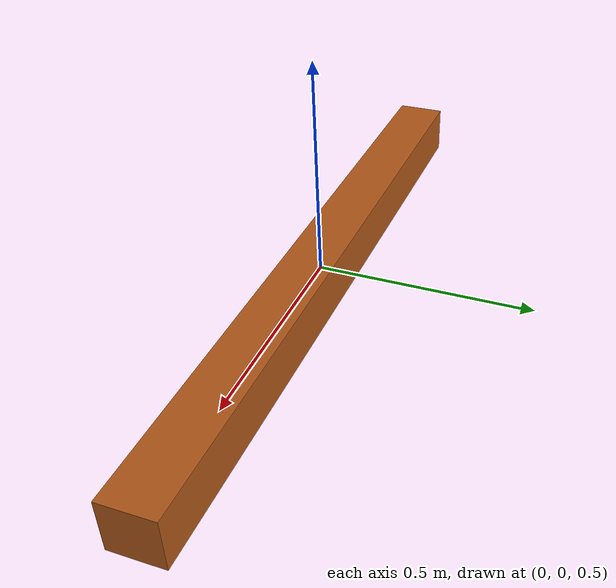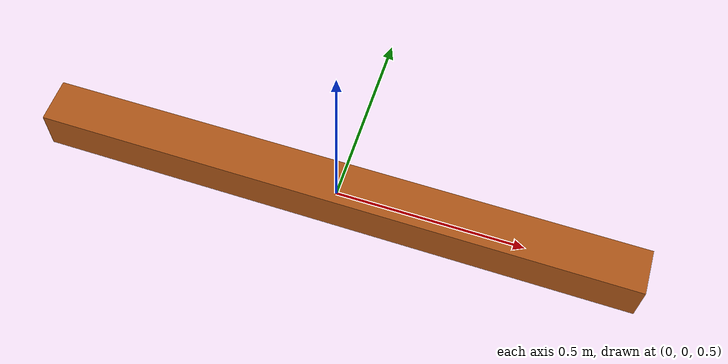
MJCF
<mujoco model="rotation">
  <option timestep="0.04" gravity="0 0 0"/>
  <visual><global offwidth="320" offheight="240"/></visual>
  <worldbody>
    <light pos="0 -4 4"/>
    <camera name="track" pos="0 -4 3" xyaxes="1 0 0 0 0.65 0.76"/>
    <body name="rotor" pos="0 0 0.5">
      <joint name="hinge" type="hinge" axis="0 0 1" damping="0.0"/>
      <geom name="bar" type="box" size="0.8 0.06 0.06" mass="1" rgba="0.7 0.35 0.1 1"/>
    </body>
  </worldbody>
  <actuator><motor name="torque" joint="hinge" gear="1"/></actuator>
</mujoco>
